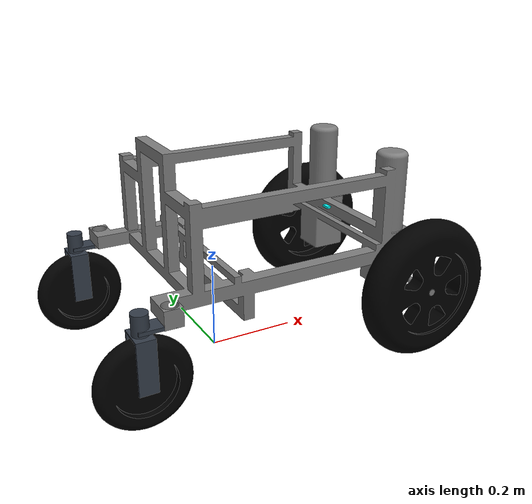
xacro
<?xml version="1.0" encoding="utf-8"?>

<robot name="robot_platform_urdf" xmlns:xacro="http://www.ros.org/wiki/xacro">

  <!-- dummy link -->
  <link name="base_footprint"/>

  <!-- chassis -->
  <link name="chassis">
    <inertial>
      <origin
        xyz="0 0 0"
        rpy="0 0 0" />
      <mass
        value="28" />
      <inertia
        ixx="0.0385919077427861"
        ixy="-1.42698858839734E-16"
        ixz="-8.43576589332318E-05"
        iyy="0.0585218852507233"
        iyz="8.03899668248163E-17"
        izz="0.0423119666555374" />
    </inertial>
    <visual>
      <origin
        xyz="0 0 0"
        rpy="0 0 0" />
      <geometry>
        <mesh
          filename="package://fyp_sim/meshes/chassis.stl" scale="1 1 1" />
      </geometry>
      <material
        name="chassis_material">
        <color
          rgba="0.5 0.5 0.5 1.0" />
      </material>
    </visual>
    <collision name="chassis_collision">>
      <origin
        xyz="0 0 0"
        rpy="0 0 ${-pi/2}" />
      <geometry>
        <mesh
          filename="package://fyp_sim/meshes/chassis.stl" scale="1 1 1" />
      </geometry>
    </collision>
  </link>

  <!-- back wheel left -->
  <link name="front_wheel_right">
    <inertial>
      <origin
        xyz="0 0 0"
        rpy="0 0 0" />
      <mass
        value="1" />
        <inertia
          ixx="1E-3"
          ixy="0"
          ixz="0"
          iyy="1E-3"
          iyz="0"
          izz="1E-3" />
    </inertial>
    <visual>
      <origin
        xyz="0 0 0"
        rpy="0 0 0" />
      <geometry>
        <mesh
          filename="package://fyp_sim/meshes/back_wheel.stl" scale="0.01 0.01 0.01"/>
      </geometry>
      <material
        name="back_wheel_left_material">
        <color
          rgba="0.0 0.0 0.0 1.0" />
      </material>
    </visual>
    <collision name="back_wheel_left_collision">
      <origin
        xyz="0 0 0"
        rpy="0 0 0" />
      <geometry>
        <mesh
          filename="package://fyp_sim/meshes/back_wheel.stl" scale="0.01 0.01 0.01"/>
      </geometry>
      <surface>
        <friction>
          <ode>
            <mu>1</mu>
            <mu2>1</mu2>
          </ode>
        </friction>
      </surface>
    </collision>
  </link>

  <!-- back wheel right -->
  <link name="front_wheel_left">
    <inertial>
      <origin
        xyz="0 0 0"
        rpy="0 0 0" />
      <mass
        value="1" />
        <inertia
          ixx="1E-3"
          ixy="0"
          ixz="0"
          iyy="1E-3"
          iyz="0"
          izz="1E-3" />
    </inertial>
    <visual>
      <origin
        xyz="0 0 0"
        rpy="0 0 0" />
      <geometry>
        <mesh
          filename="package://fyp_sim/meshes/back_wheel.stl" scale="0.01 0.01 0.01"/>
      </geometry>
      <material
        name="back_wheel_right_material">
        <color
          rgba="0.0 0.0 0.0 1.0" />
      </material>
    </visual>
    <collision name="back_wheel_right_collision">
      <origin
        xyz="0 0 0"
        rpy="0 0 0" />
      <geometry>
        <mesh
          filename="package://fyp_sim/meshes/back_wheel.stl" scale="0.01 0.01 0.01"/>
      </geometry>
      <surface>
        <friction>
          <ode>
            <mu>1</mu>
            <mu2>1</mu2>
          </ode>
        </friction>
      </surface>
    </collision>
  </link>

  <!-- front wheel left connector -->
  <link name="back_wheel_right_connector">
    <inertial>
      <origin
        xyz="0 0 0"
        rpy="0 0 0" />
      <mass
        value="0.1" />
        <inertia
          ixx="1E-3"
          ixy="0"
          ixz="0"
          iyy="1E-3"
          iyz="0"
          izz="1E-3" />
    </inertial>
    <visual>
      <origin
        xyz="0 0 0"
        rpy="0 0 0" />
      <geometry>
        <mesh
          filename="package://fyp_sim/meshes/front_wheel_connector.stl" scale="0.01 0.01 0.01"/>
      </geometry>
      <material
        name="front_wheel_left_connector_material">
        <color
          rgba="0.203125 0.238281 0.285156 1.0" />
      </material>
    </visual>
    <collision name="front_wheel_left_connector_collision">
      <origin
        xyz="0 0 0"
        rpy="0 0 0" />
      <geometry>
        <mesh
          filename="package://fyp_sim/meshes/front_wheel_connector.stl" scale="0.01 0.01 0.01"/>
      </geometry>
    </collision>
  </link>

  <!-- front wheel left connector bar -->
  <link name="back_wheel_right_bar">
    <inertial>
      <origin
        xyz="-0.03 0 0"
        rpy="0 0 0" />
      <mass
        value="0.1" />
        <inertia
          ixx="1E-3"
          ixy="0"
          ixz="0"
          iyy="1E-3"
          iyz="0"
          izz="1E-3" />
    </inertial>
    <visual>
      <origin
        xyz="-0.03 0 0"
        rpy="0 0 0" />
      <geometry>
        <box size="0.08 0.04 0.008"/>
      </geometry>
      <material
        name="front_wheel_left_bar_material">
        <color
          rgba="0.203125 0.238281 0.285156 1.0" />
      </material>
    </visual>
    <collision name="front_wheel_left_bar_collision">
      <origin
        xyz="-0.03 0 0"
        rpy="0 0 0" />
      <geometry>
        <box size="0.08 0.04 0.008"/>
      </geometry>
    </collision>
  </link>

  <!-- front wheel right connector bar -->
  <link name="back_wheel_left_bar">
    <inertial>
      <origin
        xyz="-0.03 0 0"
        rpy="0 0 0" />
      <mass
        value="0.1" />
        <inertia
          ixx="1E-3"
          ixy="0"
          ixz="0"
          iyy="1E-3"
          iyz="0"
          izz="1E-3" />
    </inertial>
    <visual>
      <origin
        xyz="-0.03 0 0"
        rpy="0 0 0" />
      <geometry>
        <box size="0.08 0.04 0.008"/>
      </geometry>
      <material
        name="front_wheel_right_bar_material">
        <color
          rgba="0.203125 0.238281 0.285156 1.0" />
      </material>
    </visual>
    <collision name="front_wheel_right_bar_collision">
      <origin
        xyz="-0.03 0 0"
        rpy="0 0 0" />
      <geometry>
        <box size="0.08 0.04 0.008"/>
      </geometry>
    </collision>
  </link>

  <!-- front wheel right connector -->
  <link name="back_wheel_left_connector">
    <inertial>
      <origin
        xyz="0 0 0"
        rpy="0 0 0" />
      <mass
        value="0.1" />
        <inertia
          ixx="1E-3"
          ixy="0"
          ixz="0"
          iyy="1E-3"
          iyz="0"
          izz="1E-3" />
    </inertial>
    <visual>
      <origin
        xyz="0 0 0"
        rpy="0 0 0" />
      <geometry>
        <mesh
          filename="package://fyp_sim/meshes/front_wheel_connector.stl" scale="0.01 0.01 0.01"/>
      </geometry>
      <material
        name="front_wheel_right_connector_material">
        <color
          rgba="0.203125 0.238281 0.285156 1.0" />
      </material>
    </visual>
    <collision name="front_wheel_right_connector_collision">
      <origin
        xyz="0 0 0"
        rpy="0 0 0" />
      <geometry>
        <mesh
          filename="package://fyp_sim/meshes/front_wheel_connector.stl" scale="0.01 0.01 0.01"/>
      </geometry>
    </collision>
  </link>

  <!-- front wheel right -->
  <link name="back_wheel_left">
    <inertial>
      <origin
        xyz="0 0 0"
        rpy="0 0 0" />
      <mass
        value="0.5" />
        <inertia
          ixx="1E-3"
          ixy="0"
          ixz="0"
          iyy="1E-3"
          iyz="0"
          izz="1E-3" />
    </inertial>
    <visual>
      <origin
        xyz="0 0 0"
        rpy="0 0 0" />
      <geometry>
        <mesh
          filename="package://fyp_sim/meshes/front_wheel.stl" scale="0.01 0.01 0.01"/>
      </geometry>
      <material
        name="front_wheel_right_material">
        <color
          rgba="0.0 0.0 0.0 1.0" />
      </material>
    </visual>
    <collision name="front_wheel_right_collision">
      <origin
        xyz="0 0 0"
        rpy="0 0 0" />
      <geometry>
        <mesh
          filename="package://fyp_sim/meshes/front_wheel.stl" scale="0.01 0.01 0.01"/>
      </geometry>
      <surface>
        <friction>
          <ode>
            <mu>1</mu>
            <mu2>1</mu2>
          </ode>
        </friction>
      </surface>
    </collision>
  </link>

  <!-- front wheel left -->
  <link name="back_wheel_right">
    <inertial>
      <origin
        xyz="0 0 0"
        rpy="0 0 0" />
      <mass
        value="0.5" />
      <inertia
        ixx="1E-3"
        ixy="0"
        ixz="0"
        iyy="1E-3"
        iyz="0"
        izz="1E-3" />
    </inertial>
    <visual>
      <origin
        xyz="0 0 0"
        rpy="0 0 0" />
      <geometry>
        <mesh
          filename="package://fyp_sim/meshes/front_wheel.stl" scale="0.01 0.01 0.01"/>
      </geometry>
      <material
        name="front_wheel_left_material">
        <color
          rgba="0.0 0.0 0.0 1.0" />
      </material>
    </visual>
    <collision name="front_wheel_left_collision">
      <origin
        xyz="0 0 0"
        rpy="0 0 0" />
      <geometry>
        <mesh
          filename="package://fyp_sim/meshes/front_wheel.stl" scale="0.01 0.01 0.01"/>
      </geometry>
      <surface>
        <friction>
          <ode>
            <mu>1</mu>
            <mu2>1</mu2>
          </ode>
        </friction>
      </surface>
    </collision>
  </link>

 <link name="imu_link">
   <inertial>
     <origin xyz="0 0 0" rpy="0 0 0"/>
     <mass value="1"/>
     <inertia ixx="100"  ixy="0"  ixz="0" iyy="100" iyz="0" izz="100" />
   </inertial>

   <visual>
     <origin xyz="0 0 0" rpy="0 0 0" />
     <geometry>
       <box size="0.01 0.02 0.005" />
     </geometry>
     <material name="Cyan">
       <color rgba="0 1.0 1.0 1.0"/>
     </material>
   </visual>
 </link>

  <joint name="base_joint" type="fixed">
    <origin
      xyz="0.1 0 0.25"
      rpy="0 0 0" />

    <parent
      link="base_footprint" />
    <child
      link="chassis" />
  </joint>

  <joint name="imu_joint" type="fixed">
    <origin
      xyz="0.205 0 0.04"
      rpy="0 0 0" />

    <parent
      link="chassis" />
    <child
      link="imu_link" />
  </joint>

  <joint name="front_RW_joint"
    type="continuous">
    <origin
      xyz="0.301 -0.245 -0.09"
      rpy="${pi/2} 0 0" />
    <parent
      link="chassis" />
    <child
      link="front_wheel_right" />
    <axis
      xyz="0 0 -1" />
      <dynamics friction="0.3"/>
  </joint>

  <joint name="front_LW_joint"
    type="continuous">
    <origin
      xyz="0.301 0.245 -0.09"
      rpy="${-pi/2} 0 0" />
    <parent
      link="chassis" />
    <child
      link="front_wheel_left" />
    <axis
      xyz="0 0 1" />
      <dynamics friction="0.3"/>
  </joint>

  <joint name="back_wheel_right_bar_joint"
    type="fixed">
    <origin
      xyz="-0.289 -0.22 -0.035"
      rpy="0 0 0" />
    <parent
      link="chassis" />
    <child
      link="back_wheel_right_bar" />
    <axis
      xyz="0 0 1" />
      <dynamics friction="0.2"/>
  </joint>

  <joint name="back_RW_con_joint"
    type="fixed">
    <origin
      xyz="-0.06 0 0.03513"
      rpy="0 0 ${pi/2}" />
    <parent
      link="back_wheel_right_bar" />
    <child
      link="back_wheel_right_connector" />
      <!-- front_wheel_left_bar -->
    <axis
      xyz="0 0 1" />
  </joint>

  <joint name="back_wheel_left_bar_joint"
    type="fixed">
    <origin
      xyz="-0.289 0.22 -0.035"
      rpy="0 0 0" />
    <parent
      link="chassis" />
    <child
      link="back_wheel_left_bar" />
    <axis
      xyz="0 0 1" />
      <dynamics friction="0.2"/>
  </joint>

  <joint name="back_LW_con_joint"
    type="fixed">
    <origin
      xyz="-0.06 0 0.03513"
      rpy="0 0 ${pi/2}" />
    <parent
      link="back_wheel_left_bar" />
    <child
      link="back_wheel_left_connector" />
    <axis
      xyz="0 0 1" />
  </joint>

  <joint name="back_LW_joint"
    type="fixed">
    <origin
      xyz="0 0 -0.15"
      rpy="0 ${pi/2} 0" />
    <parent
      link="back_wheel_left_connector" />
    <child
      link="back_wheel_left" />
    <axis
      xyz="0 0 -1" />
  </joint>

  <joint name="back_RW_joint"
    type="fixed">
    <origin
      xyz="0 0 -0.15"
      rpy="0 ${-pi/2} 0" />
    <parent
      link="back_wheel_right_connector"/>
    <child
      link="back_wheel_right" />
    <axis
      xyz="0 0 1" />
  </joint>

</robot>
